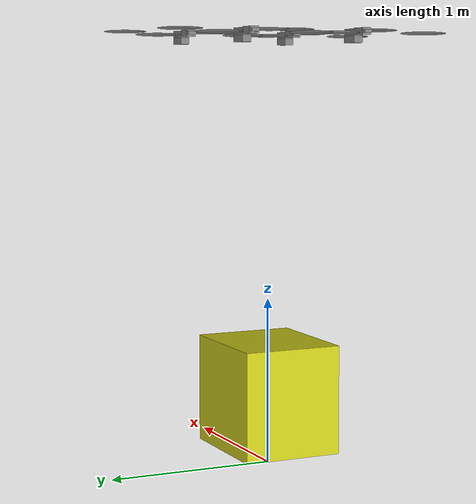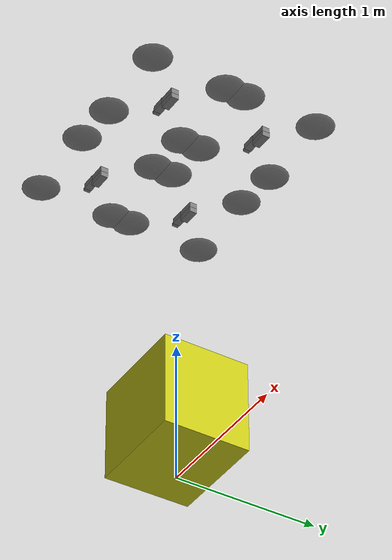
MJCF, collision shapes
<mujoco model="Skydio X2">

  <extension>
    <plugin plugin="mujoco.elasticity.cable"/>
  </extension>

  <compiler autolimits="true" assetdir="assets"/>

  <option timestep="0.01" density="1.225" viscosity="1.8e-5"/>

  <default>
    <default class="x2">
      <geom mass="0"/>
      <motor ctrlrange="0 13"/>
      <mesh scale="0.01 0.01 0.01"/>

      <default class="visual">
        <geom group="2" type="mesh" contype="0" conaffinity="0"/>
      </default>

      <default class="collision">
        <geom group="3" type="box"/>

        <default class="rotor">
          <geom type="ellipsoid" size=".13 .13 .01"/>
        </default>

      </default>
      <site group="5"/>
    </default>

  </default>

  <asset>
    <texture type="2d" file="X2_lowpoly_texture_SpinningProps_1024.png"/>
    <material name="phong3SG" texture="X2_lowpoly_texture_SpinningProps_1024"/>
    <material name="invisible" rgba="0 0 0 0"/>

    <mesh class="x2" file="X2_lowpoly.obj"/>
  </asset>

  <worldbody>
    <light name="spotlight" mode="targetbodycom" target="x2" pos="0 -1 2"/>

    <body name="load1" pos="0 0 0.425">
	    <geom name="load1"  rgba="0.8 0.8 0.1 1" size="0.3525 0.298 0.325" type="box" mass="0.815"/>
	    <joint name="cable_1e" type="hinge" pos="-0.115 -0.09 0.1625"/>
	    <joint name="cable_2e" type="hinge" pos="0.115 -0.09 0.1625"/>
	    <joint name="cable_3e" type="hinge" pos="0.115 0.09 0.1625"/>
	    <joint name="cable_4e" type="hinge" pos="-0.115 0.09 0.1625"/>
　　</body>

    	<body name="x2" pos="-0.45 -0.35 2.52" childclass="x2">

	      <camera name="track" pos="-1 0 .5" xyaxes="0 -1 0 1 0 2" mode="trackcom"/>
	      <site name="imu" pos="0 0 .02"/>
	      <joint name="cable_1s" type="hinge" pos="0 0 .0"/>

	      <geom material="phong3SG" mesh="X2_lowpoly" class="visual" quat="0 0 1 1"/>
	      <geom class="collision" size=".06 .027 .02" pos=".04 0 .02"/>
	      <geom class="collision" size=".06 .027 .02" pos=".04 0 .06"/>
	      <geom class="collision" size=".05 .027 .02" pos="-.07 0 .065"/>
	      <geom class="collision" size=".023 .017 .01" pos="-.137 .008 .065" quat="1 0 0 1"/>
	      <geom name="rotor1" class="rotor" pos="-.275 -.275 .05" mass=".29175"/>
	      <geom name="rotor2" class="rotor" pos="-.275 .275 .05" mass=".29175"/>
	      <geom name="rotor3" class="rotor" pos=".275 .275 .08" mass=".29175"/>
	      <geom name="rotor4" class="rotor" pos=".275 -.275 .08" mass=".29175"/>
	      <geom size=".16 .04 .02" pos="0 0 0.02" type="ellipsoid" mass=".115" class="visual" material="invisible"/>
	      <site name="thrust1" pos="-.14 -.18 .05"/>
	      <site name="thrust2" pos="-.14 .18 .05"/>
	      <site name="thrust3" pos=".14 .18 .08"/>
	      <site name="thrust4" pos=".14 -.18 .08"/>

      </body>

    	<body name="x2_1" pos="0.45 -0.35 2.52" childclass="x2">

	      <camera name="track_1" pos="-1 0 .5" xyaxes="0 -1 0 1 0 2" mode="trackcom"/>
	      <site name="imu_1" pos="1 0 .02"/>
	      <joint name="cable_2s" type="hinge" pos="0 0 .0"/>

	      <geom material="phong3SG" mesh="X2_lowpoly" class="visual" quat="0 0 1 1"/>
	      <geom class="collision" size=".06 .027 .02" pos=".04 0 .02"/>
	      <geom class="collision" size=".06 .027 .02" pos=".04 0 .06"/>
	      <geom class="collision" size=".05 .027 .02" pos="-.07 0 .065"/>
	      <geom class="collision" size=".023 .017 .01" pos="-.137 .008 .065" quat="1 0 0 1"/>
	      <geom name="rotor1_1" class="rotor" pos="-.275 -.275 .05" mass=".29175"/>
	      <geom name="rotor2_1" class="rotor" pos="-.275 .275 .05" mass=".29175"/>
	      <geom name="rotor3_1" class="rotor" pos=".275 .275 .08" mass=".29175"/>
	      <geom name="rotor4_1" class="rotor" pos=".275 -.275 .08" mass=".29175"/>
	      <geom size=".16 .04 .02" pos="0 0 0.02" type="ellipsoid" mass=".115" class="visual" material="invisible"/>
	      <site name="thrust1_1" pos="-.14 -.18 .05"/>
	      <site name="thrust2_1" pos="-.14 .18 .05"/>
	      <site name="thrust3_1" pos=".14 .18 .08"/>
	      <site name="thrust4_1" pos=".14 -.18 .08"/>

      </body>

      <body name="x2_2" pos="0.45 0.35 2.52" childclass="x2">

	      <camera name="track_2" pos="-1 0 .5" xyaxes="0 -1 0 1 0 2" mode="trackcom"/>
	      <site name="imu_2" pos="1 0 .02"/>
	      <joint name="cable_3s" type="hinge" pos="0 0 .0"/>
	      <geom material="phong3SG" mesh="X2_lowpoly" class="visual" quat="0 0 1 1"/>
	      <geom class="collision" size=".06 .027 .02" pos=".04 0 .02"/>
	      <geom class="collision" size=".06 .027 .02" pos=".04 0 .06"/>
	      <geom class="collision" size=".05 .027 .02" pos="-.07 0 .065"/>
	      <geom class="collision" size=".023 .017 .01" pos="-.137 .008 .065" quat="1 0 0 1"/>
	      <geom name="rotor1_2" class="rotor" pos="-.275 -.275 .05" mass=".29175"/>
	      <geom name="rotor2_2" class="rotor" pos="-.275 .275 .05" mass=".29175"/>
	      <geom name="rotor3_2" class="rotor" pos=".275 .275 .08" mass=".29175"/>
	      <geom name="rotor4_2" class="rotor" pos=".275 -.275 .08" mass=".29175"/>
	      <geom size=".16 .04 .02" pos="0 0 0.02" type="ellipsoid" mass=".115" class="visual" material="invisible"/>
	      <site name="thrust1_2" pos="-.14 -.18 .05"/>
	      <site name="thrust2_2" pos="-.14 .18 .05"/>
	      <site name="thrust3_2" pos=".14 .18 .08"/>
	      <site name="thrust4_2" pos=".14 -.18 .08"/>

      </body>

      <body name="x2_3" pos="-0.45 0.35 2.52" childclass="x2">

	      <camera name="track_3" pos="-1 0 .5" xyaxes="0 -1 0 1 0 2" mode="trackcom"/>
	      <site name="imu_3" pos="1 0 .02"/>
	      <joint name="cable_4s" type="hinge" pos="0 0 .0"/>

	      <geom material="phong3SG" mesh="X2_lowpoly" class="visual" quat="0 0 1 1"/>
	      <geom class="collision" size=".06 .027 .02" pos=".04 0 .02"/>
	      <geom class="collision" size=".06 .027 .02" pos=".04 0 .06"/>
	      <geom class="collision" size=".05 .027 .02" pos="-.07 0 .065"/>
	      <geom class="collision" size=".023 .017 .01" pos="-.137 .008 .065" quat="1 0 0 1"/>
	      <geom name="rotor1_3" class="rotor" pos="-.275 -.275 .05" mass=".29175"/>
	      <geom name="rotor2_3" class="rotor" pos="-.275 .275 .05" mass=".29175"/>
	      <geom name="rotor3_3" class="rotor" pos=".275 .275 .08" mass=".29175"/>
	      <geom name="rotor4_3" class="rotor" pos=".275 -.275 .08" mass=".29175"/>
	      <geom size=".16 .04 .02" pos="0 0 0.02" type="ellipsoid" mass=".115" class="visual" material="invisible"/>
	      <site name="thrust1_3" pos="-.14 -.18 .05"/>
	      <site name="thrust2_3" pos="-.14 .18 .05"/>
	      <site name="thrust3_3" pos=".14 .18 .08"/>
	      <site name="thrust4_3" pos=".14 -.18 .08"/>

     </body>

  </worldbody>

  <actuator>
    <motor class="x2" name="thrust1" site="thrust1" gear="0 0 1 0 0 .0201"/>
    <motor class="x2" name="thrust2" site="thrust2" gear="0 0 1 0 0 -.0201"/>
    <motor class="x2" name="thrust3" site="thrust3" gear="0 0 1 0 0 .0201"/>
    <motor class="x2" name="thrust4" site="thrust4" gear="0 0 1 0 0 -.0201"/>

    <motor class="x2" name="thrust1_1" site="thrust1_1" gear="0 0 1 0 0 .0201"/>
    <motor class="x2" name="thrust2_1" site="thrust2_1" gear="0 0 1 0 0 -.0201"/>
    <motor class="x2" name="thrust3_1" site="thrust3_1" gear="0 0 1 0 0 .0201"/>
    <motor class="x2" name="thrust4_1" site="thrust4_1" gear="0 0 1 0 0 -.0201"/>

    <motor class="x2" name="thrust1_2" site="thrust1_2" gear="0 0 1 0 0 .0201"/>
    <motor class="x2" name="thrust2_2" site="thrust2_2" gear="0 0 1 0 0 -.0201"/>
    <motor class="x2" name="thrust3_2" site="thrust3_2" gear="0 0 1 0 0 .0201"/>
    <motor class="x2" name="thrust4_2" site="thrust4_2" gear="0 0 1 0 0 -.0201"/>

    <motor class="x2" name="thrust1_3" site="thrust1_3" gear="0 0 1 0 0 .0201"/>
    <motor class="x2" name="thrust2_3" site="thrust2_3" gear="0 0 1 0 0 -.0201"/>
    <motor class="x2" name="thrust3_3" site="thrust3_3" gear="0 0 1 0 0 .0201"/>
    <motor class="x2" name="thrust4_3" site="thrust4_3" gear="0 0 1 0 0 -.0201"/>
  </actuator>

  <sensor>

    <gyro name="body_gyro" site="imu"/>
    <accelerometer name="body_linacc" site="imu"/>
    <framequat name="body_quat" objtype="site" objname="imu"/>

    <gyro name="body_gyro_1" site="imu_1"/>
    <accelerometer name="body_linacc_1" site="imu_1"/>
    <framequat name="body_quat_1" objtype="site" objname="imu_1"/>

    <gyro name="body_gyro_2" site="imu_2"/>
    <accelerometer name="body_linacc_2" site="imu_2"/>
    <framequat name="body_quat_2" objtype="site" objname="imu_2"/>

    <gyro name="body_gyro_3" site="imu_3"/>
    <accelerometer name="body_linacc_3" site="imu_3"/>
    <framequat name="body_quat_3" objtype="site" objname="imu_3"/>
  </sensor>

<tendon>
	    <fixed name="s1" >
		    <joint joint="cable_1e" coef="1.0"/>
		    <joint joint="cable_1s" coef="-1.0"/>
	    </fixed>
	    <fixed name="s2">
		    <joint joint="cable_2e" coef="1.0"/>
		    <joint joint="cable_2s" coef="-1.0"/>
	    </fixed>
	    <fixed name="s3">
		    <joint joint="cable_3e" coef="1.0"/>
		    <joint joint="cable_3s" coef="-1.0"/>
	    </fixed>
	    <fixed name="s4">
		    <joint joint="cable_4e" coef="1.0"/>
		    <joint joint="cable_4s" coef="-1.0"/>
	    </fixed>
</tendon>

</mujoco>
